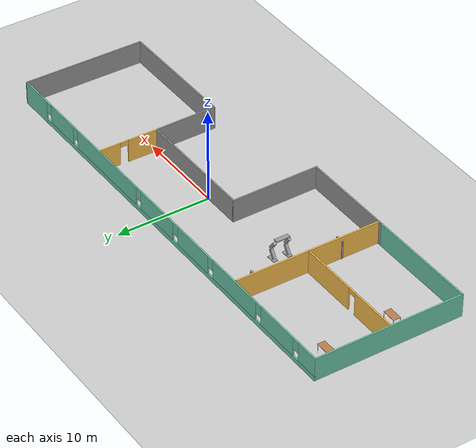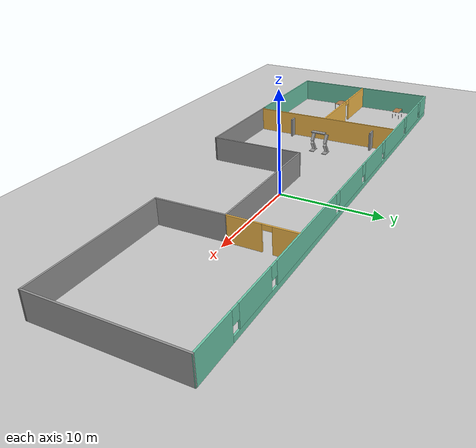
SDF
<sdf version="1.6">
 <world name="default">
  <model name="ground_plane">
   <static>1</static>
   <link name="link">
    <collision name="collision">
     <geometry><plane><normal>0 0 1</normal><size>100 100</size></plane></geometry>
     <surface>
      <contact><collide_bitmask>65535</collide_bitmask></contact>
      <friction><ode><mu>100</mu><mu2>50</mu2></ode></friction>
     </surface>
    </collision>
    <visual name="visual">
     <cast_shadows>0</cast_shadows>
     <geometry><plane><normal>0 0 1</normal><size>100 100</size></plane></geometry>
     <material>
      <script><uri>file://media/materials/scripts/gazebo.material</uri><name>Gazebo/Grey</name></script>
     </material>
    </visual>
   </link>
  </model>
  <model name="MyBuilding">
   <pose>-1.85481 -1.4802 0 0.0085 -0 0</pose>
   <link name="Door_4">
    <collision name="Door_4_Collision">
     <geometry><box><size>0.9 0.17 2</size></box></geometry>
     <pose>0 0 1 0 -0 0</pose>
    </collision>
    <visual name="Door_4_Visual">
     <pose>0 0 1 0 -0 0</pose>
     <geometry><box><size>0.9 0.17 2</size></box></geometry>
     <material>
      <script><uri>file://media/materials/scripts/gazebo.material</uri><name>Gazebo/Grey</name></script>
     </material>
    </visual>
    <pose>-11.699 5.51769 0 0 -0 0</pose>
   </link>
   <link name="Door_5">
    <collision name="Door_5_Collision">
     <geometry><box><size>0.9 0.17 2</size></box></geometry>
     <pose>0 0 1 0 -0 0</pose>
    </collision>
    <visual name="Door_5_Visual">
     <pose>0 0 1 0 -0 0</pose>
     <geometry><box><size>0.9 0.17 2</size></box></geometry>
     <material>
      <script><uri>file://media/materials/scripts/gazebo.material</uri><name>Gazebo/Grey</name></script>
     </material>
    </visual>
    <pose>-11.913 -3.79174 0 0 -0 0</pose>
   </link>
   <link name="Wall_22">
    <collision name="Wall_22_Collision">
     <geometry><box><size>16 0.15 2.5</size></box></geometry>
     <pose>0 0 1.25 0 -0 0</pose>
    </collision>
    <visual name="Wall_22_Visual">
     <pose>0 0 1.25 0 -0 0</pose>
     <geometry><box><size>16 0.15 2.5</size></box></geometry>
     <material>
      <script><uri>file://media/materials/scripts/gazebo.material</uri><name>Gazebo/Grey</name></script>
      <ambient>0.435294 0.796078 0.67451 1</ambient>
     </material>
     <meta><layer>0</layer></meta>
    </visual>
    <pose>-24.7002 0.000204 0 0 0 -1.5708</pose>
   </link>
   <link name="Wall_23">
    <collision name="Wall_23_Collision">
     <geometry><box><size>12.25 0.15 2.5</size></box></geometry>
     <pose>0 0 1.25 0 -0 0</pose>
    </collision>
    <visual name="Wall_23_Visual">
     <pose>0 0 1.25 0 -0 0</pose>
     <geometry><box><size>12.25 0.15 2.5</size></box></geometry>
     <material>
      <script><uri>file://media/materials/scripts/gazebo.material</uri><name>Gazebo/Grey</name></script>
      <ambient>0.435294 0.796078 0.67451 1</ambient>
     </material>
     <meta><layer>0</layer></meta>
    </visual>
    <pose>-18.6502 -7.9248 0 0 -0 0</pose>
   </link>
   <link name="Wall_24">
    <collision name="Wall_24_Collision">
     <geometry><box><size>10.5 0.15 2.5</size></box></geometry>
     <pose>0 0 1.25 0 -0 0</pose>
    </collision>
    <visual name="Wall_24_Visual">
     <pose>0 0 1.25 0 -0 0</pose>
     <geometry><box><size>10.5 0.15 2.5</size></box></geometry>
     <material>
      <script><uri>file://media/materials/scripts/gazebo.material</uri><name>Gazebo/Grey</name></script>
      <ambient>1 1 1 1</ambient>
     </material>
     <meta><layer>0</layer></meta>
    </visual>
    <pose>-7.42514 -7.92474 0 0 -0 1e-05</pose>
   </link>
   <link name="Wall_25">
    <collision name="Wall_25_Collision">
     <geometry><box><size>9.55411 0.15 2.5</size></box></geometry>
     <pose>0 0 1.25 0 -0 0</pose>
    </collision>
    <visual name="Wall_25_Visual">
     <pose>0 0 1.25 0 -0 0</pose>
     <geometry><box><size>9.55411 0.15 2.5</size></box></geometry>
     <material>
      <script><uri>file://media/materials/scripts/gazebo.material</uri><name>Gazebo/Grey</name></script>
      <ambient>1 1 1 1</ambient>
     </material>
     <meta><layer>0</layer></meta>
    </visual>
    <pose>-2.30359 -3.22294 0 0 -0 1.58218</pose>
   </link>
   <link name="Wall_26">
    <collision name="Wall_26_Collision">
     <geometry><box><size>13.4464 0.15 2.5</size></box></geometry>
     <pose>0 0 1.25 0 -0 0</pose>
    </collision>
    <visual name="Wall_26_Visual">
     <pose>0 0 1.25 0 -0 0</pose>
     <geometry><box><size>13.4464 0.15 2.5</size></box></geometry>
     <material>
      <script><uri>file://media/materials/scripts/gazebo.material</uri><name>Gazebo/Grey</name></script>
      <ambient>1 1 1 1</ambient>
     </material>
     <meta><layer>0</layer></meta>
    </visual>
    <pose>4.34461 1.47901 0 0 -0 3e-05</pose>
   </link>
   <link name="Wall_27">
    <collision name="Wall_27_Collision">
     <geometry><box><size>6.80436 0.15 2.5</size></box></geometry>
     <pose>0 0 1.25 0 -0 0</pose>
    </collision>
    <visual name="Wall_27_Visual">
     <pose>0 0 1.25 0 -0 0</pose>
     <geometry><box><size>6.80436 0.15 2.5</size></box></geometry>
     <material>
      <script><uri>file://media/materials/scripts/gazebo.material</uri><name>Gazebo/Grey</name></script>
      <ambient>1 1 1 1</ambient>
     </material>
     <meta><layer>0</layer></meta>
    </visual>
    <pose>11.0464 -1.84774 0 0 0 -1.5547</pose>
   </link>
   <link name="Wall_28">
    <collision name="Wall_28_Collision">
     <geometry><box><size>13.75 0.15 2.5</size></box></geometry>
     <pose>0 0 1.25 0 -0 0</pose>
    </collision>
    <visual name="Wall_28_Visual">
     <pose>0 0 1.25 0 -0 0</pose>
     <geometry><box><size>13.75 0.15 2.5</size></box></geometry>
     <material>
      <script><uri>file://media/materials/scripts/gazebo.material</uri><name>Gazebo/Grey</name></script>
      <ambient>1 1 1 1</ambient>
     </material>
     <meta><layer>0</layer></meta>
    </visual>
    <pose>17.8999 -5.17469 0 0 -0 0</pose>
   </link>
   <link name="Wall_29">
    <collision name="Wall_29_Collision">
     <geometry><box><size>13.2501 0.15 2.5</size></box></geometry>
     <pose>0 0 1.25 0 -0 0</pose>
    </collision>
    <visual name="Wall_29_Visual">
     <pose>0 0 1.25 0 -0 0</pose>
     <geometry><box><size>13.2501 0.15 2.5</size></box></geometry>
     <material>
      <script><uri>file://media/materials/scripts/gazebo.material</uri><name>Gazebo/Grey</name></script>
      <ambient>1 1 1 1</ambient>
     </material>
     <meta><layer>0</layer></meta>
    </visual>
    <pose>24.6749 1.37526 0 0 -0 1.57462</pose>
   </link>
   <link name="Wall_30">
    <pose>-0.025193 7.9252 0 0 -0 3.14159</pose>
    <visual name="Wall_30_Visual_0">
     <pose>-22.7354 0 1.25 0 -0 0</pose>
     <geometry><box><size>4.0293 0.15 2.5</size></box></geometry>
     <material>
      <script><uri>file://media/materials/scripts/gazebo.material</uri><name>Gazebo/Grey</name></script>
      <ambient>0.435294 0.796078 0.67451 1</ambient>
     </material>
     <meta><layer>0</layer></meta>
    </visual>
    <collision name="Wall_30_Collision_0">
     <geometry><box><size>4.0293 0.15 2.5</size></box></geometry>
     <pose>-22.7354 0 1.25 0 -0 0</pose>
    </collision>
    <visual name="Wall_30_Visual_1">
     <pose>2.01465 0 0.25 0 -0 0</pose>
     <geometry><box><size>45.4707 0.15 0.5</size></box></geometry>
     <material>
      <script><uri>file://media/materials/scripts/gazebo.material</uri><name>Gazebo/Grey</name></script>
      <ambient>0.435294 0.796078 0.67451 1</ambient>
     </material>
     <meta><layer>0</layer></meta>
    </visual>
    <collision name="Wall_30_Collision_1">
     <geometry><box><size>45.4707 0.15 0.5</size></box></geometry>
     <pose>2.01465 0 0.25 0 -0 0</pose>
    </collision>
    <visual name="Wall_30_Visual_2">
     <pose>-17.8061 0 1.5 0 -0 0</pose>
     <geometry><box><size>4.22924 0.15 2</size></box></geometry>
     <material>
      <script><uri>file://media/materials/scripts/gazebo.material</uri><name>Gazebo/Grey</name></script>
      <ambient>0.435294 0.796078 0.67451 1</ambient>
     </material>
     <meta><layer>0</layer></meta>
    </visual>
    <collision name="Wall_30_Collision_2">
     <geometry><box><size>4.22924 0.15 2</size></box></geometry>
     <pose>-17.8061 0 1.5 0 -0 0</pose>
    </collision>
    <visual name="Wall_30_Visual_3">
     <pose>-9.5667 0 1.5 0 -0 0</pose>
     <geometry><box><size>10.6495 0.15 2</size></box></geometry>
     <material>
      <script><uri>file://media/materials/scripts/gazebo.material</uri><name>Gazebo/Grey</name></script>
      <ambient>0.435294 0.796078 0.67451 1</ambient>
     </material>
     <meta><layer>0</layer></meta>
    </visual>
    <collision name="Wall_30_Collision_3">
     <geometry><box><size>10.6495 0.15 2</size></box></geometry>
     <pose>-9.5667 0 1.5 0 -0 0</pose>
    </collision>
    <visual name="Wall_30_Visual_4">
     <pose>-0.658536 0 1.5 0 -0 0</pose>
     <geometry><box><size>5.5668 0.15 2</size></box></geometry>
     <material>
      <script><uri>file://media/materials/scripts/gazebo.material</uri><name>Gazebo/Grey</name></script>
      <ambient>0.435294 0.796078 0.67451 1</ambient>
     </material>
     <meta><layer>0</layer></meta>
    </visual>
    <collision name="Wall_30_Collision_4">
     <geometry><box><size>5.5668 0.15 2</size></box></geometry>
     <pose>-0.658536 0 1.5 0 -0 0</pose>
    </collision>
    <visual name="Wall_30_Visual_5">
     <pose>5.44075 0 1.5 0 -0 0</pose>
     <geometry><box><size>5.03177 0.15 2</size></box></geometry>
     <material>
      <script><uri>file://media/materials/scripts/gazebo.material</uri><name>Gazebo/Grey</name></script>
      <ambient>0.435294 0.796078 0.67451 1</ambient>
     </material>
     <meta><layer>0</layer></meta>
    </visual>
    <collision name="Wall_30_Collision_5">
     <geometry><box><size>5.03177 0.15 2</size></box></geometry>
     <pose>5.44075 0 1.5 0 -0 0</pose>
    </collision>
    <visual name="Wall_30_Visual_6">
     <pose>12.2088 0 1.5 0 -0 0</pose>
     <geometry><box><size>6.90436 0.15 2</size></box></geometry>
     <material>
      <script><uri>file://media/materials/scripts/gazebo.material</uri><name>Gazebo/Grey</name></script>
      <ambient>0.435294 0.796078 0.67451 1</ambient>
     </material>
     <meta><layer>0</layer></meta>
    </visual>
    <collision name="Wall_30_Collision_6">
     <geometry><box><size>6.90436 0.15 2</size></box></geometry>
     <pose>12.2088 0 1.5 0 -0 0</pose>
    </collision>
    <visual name="Wall_30_Visual_7">
     <pose>18.9501 0 1.5 0 -0 0</pose>
     <geometry><box><size>4.97827 0.15 2</size></box></geometry>
     <material>
      <script><uri>file://media/materials/scripts/gazebo.material</uri><name>Gazebo/Grey</name></script>
      <ambient>0.435294 0.796078 0.67451 1</ambient>
     </material>
     <meta><layer>0</layer></meta>
    </visual>
    <collision name="Wall_30_Collision_7">
     <geometry><box><size>4.97827 0.15 2</size></box></geometry>
     <pose>18.9501 0 1.5 0 -0 0</pose>
    </collision>
    <visual name="Wall_30_Visual_8">
     <pose>23.4946 0 1.5 0 -0 0</pose>
     <geometry><box><size>2.51073 0.15 2</size></box></geometry>
     <material>
      <script><uri>file://media/materials/scripts/gazebo.material</uri><name>Gazebo/Grey</name></script>
      <ambient>0.435294 0.796078 0.67451 1</ambient>
     </material>
     <meta><layer>0</layer></meta>
    </visual>
    <collision name="Wall_30_Collision_8">
     <geometry><box><size>2.51073 0.15 2</size></box></geometry>
     <pose>23.4946 0 1.5 0 -0 0</pose>
    </collision>
    <visual name="Wall_30_Visual_9">
     <pose>-20.3207 0 1.9 0 -0 0</pose>
     <geometry><box><size>0.8 0.15 1.2</size></box></geometry>
     <material>
      <script><uri>file://media/materials/scripts/gazebo.material</uri><name>Gazebo/Grey</name></script>
      <ambient>0.435294 0.796078 0.67451 1</ambient>
     </material>
     <meta><layer>0</layer></meta>
    </visual>
    <collision name="Wall_30_Collision_9">
     <geometry><box><size>0.8 0.15 1.2</size></box></geometry>
     <pose>-20.3207 0 1.9 0 -0 0</pose>
    </collision>
    <visual name="Wall_30_Visual_10">
     <pose>-15.2915 0 1.9 0 -0 0</pose>
     <geometry><box><size>0.8 0.15 1.2</size></box></geometry>
     <material>
      <script><uri>file://media/materials/scripts/gazebo.material</uri><name>Gazebo/Grey</name></script>
      <ambient>0.435294 0.796078 0.67451 1</ambient>
     </material>
     <meta><layer>0</layer></meta>
    </visual>
    <collision name="Wall_30_Collision_10">
     <geometry><box><size>0.8 0.15 1.2</size></box></geometry>
     <pose>-15.2915 0 1.9 0 -0 0</pose>
    </collision>
    <visual name="Wall_30_Visual_11">
     <pose>-3.84193 0 1.9 0 -0 0</pose>
     <geometry><box><size>0.8 0.15 1.2</size></box></geometry>
     <material>
      <script><uri>file://media/materials/scripts/gazebo.material</uri><name>Gazebo/Grey</name></script>
      <ambient>0.435294 0.796078 0.67451 1</ambient>
     </material>
     <meta><layer>0</layer></meta>
    </visual>
    <collision name="Wall_30_Collision_11">
     <geometry><box><size>0.8 0.15 1.2</size></box></geometry>
     <pose>-3.84193 0 1.9 0 -0 0</pose>
    </collision>
    <visual name="Wall_30_Visual_12">
     <pose>2.52486 0 1.9 0 -0 0</pose>
     <geometry><box><size>0.8 0.15 1.2</size></box></geometry>
     <material>
      <script><uri>file://media/materials/scripts/gazebo.material</uri><name>Gazebo/Grey</name></script>
      <ambient>0.435294 0.796078 0.67451 1</ambient>
     </material>
     <meta><layer>0</layer></meta>
    </visual>
    <collision name="Wall_30_Collision_12">
     <geometry><box><size>0.8 0.15 1.2</size></box></geometry>
     <pose>2.52486 0 1.9 0 -0 0</pose>
    </collision>
    <visual name="Wall_30_Visual_13">
     <pose>8.35664 0 1.9 0 -0 0</pose>
     <geometry><box><size>0.8 0.15 1.2</size></box></geometry>
     <material>
      <script><uri>file://media/materials/scripts/gazebo.material</uri><name>Gazebo/Grey</name></script>
      <ambient>0.435294 0.796078 0.67451 1</ambient>
     </material>
     <meta><layer>0</layer></meta>
    </visual>
    <collision name="Wall_30_Collision_13">
     <geometry><box><size>0.8 0.15 1.2</size></box></geometry>
     <pose>8.35664 0 1.9 0 -0 0</pose>
    </collision>
    <visual name="Wall_30_Visual_14">
     <pose>16.061 0 1.9 0 -0 0</pose>
     <geometry><box><size>0.8 0.15 1.2</size></box></geometry>
     <material>
      <script><uri>file://media/materials/scripts/gazebo.material</uri><name>Gazebo/Grey</name></script>
      <ambient>0.435294 0.796078 0.67451 1</ambient>
     </material>
     <meta><layer>0</layer></meta>
    </visual>
    <collision name="Wall_30_Collision_14">
     <geometry><box><size>0.8 0.15 1.2</size></box></geometry>
     <pose>16.061 0 1.9 0 -0 0</pose>
    </collision>
    <visual name="Wall_30_Visual_15">
     <pose>21.8393 0 1.9 0 -0 0</pose>
     <geometry><box><size>0.8 0.15 1.2</size></box></geometry>
     <material>
      <script><uri>file://media/materials/scripts/gazebo.material</uri><name>Gazebo/Grey</name></script>
      <ambient>0.435294 0.796078 0.67451 1</ambient>
     </material>
     <meta><layer>0</layer></meta>
    </visual>
    <collision name="Wall_30_Collision_15">
     <geometry><box><size>0.8 0.15 1.2</size></box></geometry>
     <pose>21.8393 0 1.9 0 -0 0</pose>
    </collision>
   </link>
   <link name="Wall_32">
    <collision name="Wall_32_Collision">
     <geometry><box><size>15.75 0.15 2.5</size></box></geometry>
     <pose>0 0 1.25 0 -0 0</pose>
    </collision>
    <visual name="Wall_32_Visual">
     <pose>0 0 1.25 0 -0 0</pose>
     <geometry><box><size>15.75 0.15 2.5</size></box></geometry>
     <material>
      <script><uri>file://media/materials/scripts/gazebo.material</uri><name>Gazebo/Grey</name></script>
      <ambient>1 0.764706 0.305882 1</ambient>
     </material>
     <meta><layer>0</layer></meta>
    </visual>
    <pose>-12.2342 -0.088796 0 0 0 -1.5708</pose>
   </link>
   <link name="Wall_34">
    <pose>-18.4182 -0.099796 0 0 -0 0</pose>
    <visual name="Wall_34_Visual_0">
     <pose>-3.62857 0 1.25 0 -0 0</pose>
     <geometry><box><size>5.24287 0.15 2.5</size></box></geometry>
     <material>
      <script><uri>file://media/materials/scripts/gazebo.material</uri><name>Gazebo/Grey</name></script>
      <ambient>1 0.764706 0.305882 1</ambient>
     </material>
     <meta><layer>0</layer></meta>
    </visual>
    <collision name="Wall_34_Collision_0">
     <geometry><box><size>5.24287 0.15 2.5</size></box></geometry>
     <pose>-3.62857 0 1.25 0 -0 0</pose>
    </collision>
    <visual name="Wall_34_Visual_1">
     <pose>3.07144 0 1.25 0 -0 0</pose>
     <geometry><box><size>6.35713 0.15 2.5</size></box></geometry>
     <material>
      <script><uri>file://media/materials/scripts/gazebo.material</uri><name>Gazebo/Grey</name></script>
      <ambient>1 0.764706 0.305882 1</ambient>
     </material>
     <meta><layer>0</layer></meta>
    </visual>
    <collision name="Wall_34_Collision_1">
     <geometry><box><size>6.35713 0.15 2.5</size></box></geometry>
     <pose>3.07144 0 1.25 0 -0 0</pose>
    </collision>
    <visual name="Wall_34_Visual_2">
     <pose>-0.557131 0 2.25 0 -0 0</pose>
     <geometry><box><size>0.9 0.15 0.5</size></box></geometry>
     <material>
      <script><uri>file://media/materials/scripts/gazebo.material</uri><name>Gazebo/Grey</name></script>
      <ambient>1 0.764706 0.305882 1</ambient>
     </material>
     <meta><layer>0</layer></meta>
    </visual>
    <collision name="Wall_34_Collision_2">
     <geometry><box><size>0.9 0.15 0.5</size></box></geometry>
     <pose>-0.557131 0 2.25 0 -0 0</pose>
    </collision>
   </link>
   <link name="Wall_36">
    <pose>10.9928 4.6542 0 0 0 -1.5708</pose>
    <visual name="Wall_36_Visual_0">
     <pose>-2.09449 0 1.25 0 -0 0</pose>
     <geometry><box><size>2.31103 0.15 2.5</size></box></geometry>
     <material>
      <script><uri>file://media/materials/scripts/gazebo.material</uri><name>Gazebo/Grey</name></script>
      <ambient>1 0.764706 0.305882 1</ambient>
     </material>
     <meta><layer>0</layer></meta>
    </visual>
    <collision name="Wall_36_Collision_0">
     <geometry><box><size>2.31103 0.15 2.5</size></box></geometry>
     <pose>-2.09449 0 1.25 0 -0 0</pose>
    </collision>
    <visual name="Wall_36_Visual_1">
     <pose>1.60551 0 1.25 0 -0 0</pose>
     <geometry><box><size>3.28897 0.15 2.5</size></box></geometry>
     <material>
      <script><uri>file://media/materials/scripts/gazebo.material</uri><name>Gazebo/Grey</name></script>
      <ambient>1 0.764706 0.305882 1</ambient>
     </material>
     <meta><layer>0</layer></meta>
    </visual>
    <collision name="Wall_36_Collision_1">
     <geometry><box><size>3.28897 0.15 2.5</size></box></geometry>
     <pose>1.60551 0 1.25 0 -0 0</pose>
    </collision>
    <visual name="Wall_36_Visual_2">
     <pose>-0.488973 0 2.25 0 -0 0</pose>
     <geometry><box><size>0.9 0.15 0.5</size></box></geometry>
     <material>
      <script><uri>file://media/materials/scripts/gazebo.material</uri><name>Gazebo/Grey</name></script>
      <ambient>1 0.764706 0.305882 1</ambient>
     </material>
     <meta><layer>0</layer></meta>
    </visual>
    <collision name="Wall_36_Collision_2">
     <geometry><box><size>0.9 0.15 0.5</size></box></geometry>
     <pose>-0.488973 0 2.25 0 -0 0</pose>
    </collision>
   </link>
   <static>1</static>
  </model>
  <model name="Humanoid_0">
   <link name="link_0">
    <pose>-0.048492 0.285713 -0.132344 0 -0 0</pose>
    <inertial>
     <mass>1</mass>
     <inertia>
      <ixx>0.166667</ixx>
      <ixy>0</ixy>
      <ixz>0</ixz>
      <iyy>0.166667</iyy>
      <iyz>0</iyz>
      <izz>0.166667</izz>
     </inertia>
    </inertial>
    <visual name="visual">
     <geometry><box><size>1 0.5 0.3</size></box></geometry>
     <material>
      <lighting>1</lighting>
      <script><uri>file://media/materials/scripts/gazebo.material</uri><name>Gazebo/Grey</name></script>
      <shader type="pixel"><normal_map>__default__</normal_map></shader>
      <ambient>0.3 0.3 0.3 1</ambient>
      <diffuse>0.7 0.7 0.7 1</diffuse>
      <specular>0.01 0.01 0.01 1</specular>
      <emissive>0 0 0 1</emissive>
     </material>
    </visual>
    <collision name="collision">
     <geometry><box><size>1 0.5 0.3</size></box></geometry>
     <surface>
      <friction>
       <ode><mu>1</mu><mu2>1</mu2><fdir1>0 0 0</fdir1><slip1>0</slip1><slip2>0</slip2></ode>
       <torsional>
        <coefficient>1</coefficient>
        <patch_radius>0</patch_radius>
        <surface_radius>0</surface_radius>
        <use_patch_radius>1</use_patch_radius>
        <ode><slip>0</slip></ode>
       </torsional>
      </friction>
      <bounce><restitution_coefficient>0</restitution_coefficient><threshold>1e+06</threshold></bounce>
      <contact>
       <collide_without_contact>0</collide_without_contact>
       <collide_without_contact_bitmask>1</collide_without_contact_bitmask>
       <collide_bitmask>1</collide_bitmask>
       <ode>
        <soft_cfm>0</soft_cfm>
        <soft_erp>0.2</soft_erp>
        <kp>1e+13</kp>
        <kd>1</kd>
        <max_vel>0.01</max_vel>
        <min_depth>0</min_depth>
       </ode>
       <bullet>
        <split_impulse>1</split_impulse>
        <split_impulse_penetration_threshold>-0.01</split_impulse_penetration_threshold>
        <soft_cfm>0</soft_cfm>
        <soft_erp>0.2</soft_erp>
        <kp>1e+13</kp>
        <kd>1</kd>
       </bullet>
      </contact>
     </surface>
    </collision>
   </link>
   <link name="link_0_clone">
    <pose>0.107629 1.78606 -0.132344 0 -0 0</pose>
    <inertial>
     <mass>1</mass>
     <inertia>
      <ixx>0.166667</ixx>
      <ixy>0</ixy>
      <ixz>0</ixz>
      <iyy>0.166667</iyy>
      <iyz>0</iyz>
      <izz>0.166667</izz>
     </inertia>
    </inertial>
    <visual name="visual">
     <geometry><box><size>1 0.5 0.3</size></box></geometry>
     <material>
      <lighting>1</lighting>
      <script><uri>file://media/materials/scripts/gazebo.material</uri><name>Gazebo/Grey</name></script>
      <shader type="pixel"><normal_map>__default__</normal_map></shader>
      <ambient>0.3 0.3 0.3 1</ambient>
      <diffuse>0.7 0.7 0.7 1</diffuse>
      <specular>0.01 0.01 0.01 1</specular>
      <emissive>0 0 0 1</emissive>
     </material>
    </visual>
    <collision name="collision">
     <geometry><box><size>1 0.5 0.3</size></box></geometry>
     <surface>
      <friction>
       <ode><mu>1</mu><mu2>1</mu2><fdir1>0 0 0</fdir1><slip1>0</slip1><slip2>0</slip2></ode>
       <torsional>
        <coefficient>1</coefficient>
        <patch_radius>0</patch_radius>
        <surface_radius>0</surface_radius>
        <use_patch_radius>1</use_patch_radius>
        <ode><slip>0</slip></ode>
       </torsional>
      </friction>
      <bounce><restitution_coefficient>0</restitution_coefficient><threshold>1e+06</threshold></bounce>
      <contact>
       <collide_without_contact>0</collide_without_contact>
       <collide_without_contact_bitmask>1</collide_without_contact_bitmask>
       <collide_bitmask>1</collide_bitmask>
       <ode>
        <soft_cfm>0</soft_cfm>
        <soft_erp>0.2</soft_erp>
        <kp>1e+13</kp>
        <kd>1</kd>
        <max_vel>0.01</max_vel>
        <min_depth>0</min_depth>
       </ode>
       <bullet>
        <split_impulse>1</split_impulse>
        <split_impulse_penetration_threshold>-0.01</split_impulse_penetration_threshold>
        <soft_cfm>0</soft_cfm>
        <soft_erp>0.2</soft_erp>
        <kp>1e+13</kp>
        <kd>1</kd>
       </bullet>
      </contact>
     </surface>
    </collision>
   </link>
   <link name="link_1">
    <pose>-0.048492 0.285713 0.51502 0 0.6 0</pose>
    <inertial>
     <mass>1</mass>
     <inertia>
      <ixx>0.166667</ixx>
      <ixy>0</ixy>
      <ixz>0</ixz>
      <iyy>0.166667</iyy>
      <iyz>0</iyz>
      <izz>0.166667</izz>
     </inertia>
    </inertial>
    <visual name="visual">
     <geometry><box><size>0.3 0.3 1</size></box></geometry>
     <material>
      <lighting>1</lighting>
      <script><uri>file://media/materials/scripts/gazebo.material</uri><name>Gazebo/Grey</name></script>
      <shader type="pixel"><normal_map>__default__</normal_map></shader>
      <ambient>0.3 0.3 0.3 1</ambient>
      <diffuse>0.7 0.7 0.7 1</diffuse>
      <specular>0.01 0.01 0.01 1</specular>
      <emissive>0 0 0 1</emissive>
     </material>
    </visual>
    <collision name="collision">
     <geometry><box><size>0.3 0.3 1</size></box></geometry>
     <surface>
      <friction>
       <ode><mu>1</mu><mu2>1</mu2><fdir1>0 0 0</fdir1><slip1>0</slip1><slip2>0</slip2></ode>
       <torsional>
        <coefficient>1</coefficient>
        <patch_radius>0</patch_radius>
        <surface_radius>0</surface_radius>
        <use_patch_radius>1</use_patch_radius>
        <ode><slip>0</slip></ode>
       </torsional>
      </friction>
      <bounce><restitution_coefficient>0</restitution_coefficient><threshold>1e+06</threshold></bounce>
      <contact>
       <collide_without_contact>0</collide_without_contact>
       <collide_without_contact_bitmask>1</collide_without_contact_bitmask>
       <collide_bitmask>1</collide_bitmask>
       <ode>
        <soft_cfm>0</soft_cfm>
        <soft_erp>0.2</soft_erp>
        <kp>1e+13</kp>
        <kd>1</kd>
        <max_vel>0.01</max_vel>
        <min_depth>0</min_depth>
       </ode>
       <bullet>
        <split_impulse>1</split_impulse>
        <split_impulse_penetration_threshold>-0.01</split_impulse_penetration_threshold>
        <soft_cfm>0</soft_cfm>
        <soft_erp>0.2</soft_erp>
        <kp>1e+13</kp>
        <kd>1</kd>
       </bullet>
      </contact>
     </surface>
    </collision>
   </link>
   <link name="link_1_clone">
    <pose>-0.048492 0.285713 1.50975 0 -0.6 0</pose>
    <inertial>
     <mass>1</mass>
     <inertia>
      <ixx>0.166667</ixx>
      <ixy>0</ixy>
      <ixz>0</ixz>
      <iyy>0.166667</iyy>
      <iyz>0</iyz>
      <izz>0.166667</izz>
     </inertia>
    </inertial>
    <visual name="visual">
     <geometry><box><size>0.3 0.3 1</size></box></geometry>
     <material>
      <lighting>1</lighting>
      <script><uri>file://media/materials/scripts/gazebo.material</uri><name>Gazebo/Grey</name></script>
      <shader type="pixel"><normal_map>__default__</normal_map></shader>
      <ambient>0.3 0.3 0.3 1</ambient>
      <diffuse>0.7 0.7 0.7 1</diffuse>
      <specular>0.01 0.01 0.01 1</specular>
      <emissive>0 0 0 1</emissive>
     </material>
    </visual>
    <collision name="collision">
     <geometry><box><size>0.3 0.3 1</size></box></geometry>
     <surface>
      <friction>
       <ode><mu>1</mu><mu2>1</mu2><fdir1>0 0 0</fdir1><slip1>0</slip1><slip2>0</slip2></ode>
       <torsional>
        <coefficient>1</coefficient>
        <patch_radius>0</patch_radius>
        <surface_radius>0</surface_radius>
        <use_patch_radius>1</use_patch_radius>
        <ode><slip>0</slip></ode>
       </torsional>
      </friction>
      <bounce><restitution_coefficient>0</restitution_coefficient><threshold>1e+06</threshold></bounce>
      <contact>
       <collide_without_contact>0</collide_without_contact>
       <collide_without_contact_bitmask>1</collide_without_contact_bitmask>
       <collide_bitmask>1</collide_bitmask>
       <ode>
        <soft_cfm>0</soft_cfm>
        <soft_erp>0.2</soft_erp>
        <kp>1e+13</kp>
        <kd>1</kd>
        <max_vel>0.01</max_vel>
        <min_depth>0</min_depth>
       </ode>
       <bullet>
        <split_impulse>1</split_impulse>
        <split_impulse_penetration_threshold>-0.01</split_impulse_penetration_threshold>
        <soft_cfm>0</soft_cfm>
        <soft_erp>0.2</soft_erp>
        <kp>1e+13</kp>
        <kd>1</kd>
       </bullet>
      </contact>
     </surface>
    </collision>
   </link>
   <link name="link_1_clone_0">
    <pose>0.107629 1.78606 0.51502 0 0.6 0</pose>
    <inertial>
     <mass>1</mass>
     <inertia>
      <ixx>0.166667</ixx>
      <ixy>0</ixy>
      <ixz>0</ixz>
      <iyy>0.166667</iyy>
      <iyz>0</iyz>
      <izz>0.166667</izz>
     </inertia>
    </inertial>
    <visual name="visual">
     <geometry><box><size>0.3 0.3 1</size></box></geometry>
     <material>
      <lighting>1</lighting>
      <script><uri>file://media/materials/scripts/gazebo.material</uri><name>Gazebo/Grey</name></script>
      <shader type="pixel"><normal_map>__default__</normal_map></shader>
      <ambient>0.3 0.3 0.3 1</ambient>
      <diffuse>0.7 0.7 0.7 1</diffuse>
      <specular>0.01 0.01 0.01 1</specular>
      <emissive>0 0 0 1</emissive>
     </material>
    </visual>
    <collision name="collision">
     <geometry><box><size>0.3 0.3 1</size></box></geometry>
     <surface>
      <friction>
       <ode><mu>1</mu><mu2>1</mu2><fdir1>0 0 0</fdir1><slip1>0</slip1><slip2>0</slip2></ode>
       <torsional>
        <coefficient>1</coefficient>
        <patch_radius>0</patch_radius>
        <surface_radius>0</surface_radius>
        <use_patch_radius>1</use_patch_radius>
        <ode><slip>0</slip></ode>
       </torsional>
      </friction>
      <bounce><restitution_coefficient>0</restitution_coefficient><threshold>1e+06</threshold></bounce>
      <contact>
       <collide_without_contact>0</collide_without_contact>
       <collide_without_contact_bitmask>1</collide_without_contact_bitmask>
       <collide_bitmask>1</collide_bitmask>
       <ode>
        <soft_cfm>0</soft_cfm>
        <soft_erp>0.2</soft_erp>
        <kp>1e+13</kp>
        <kd>1</kd>
        <max_vel>0.01</max_vel>
        <min_depth>0</min_depth>
       </ode>
       <bullet>
        <split_impulse>1</split_impulse>
        <split_impulse_penetration_threshold>-0.01</split_impulse_penetration_threshold>
        <soft_cfm>0</soft_cfm>
        <soft_erp>0.2</soft_erp>
        <kp>1e+13</kp>
        <kd>1</kd>
       </bullet>
      </contact>
     </surface>
    </collision>
   </link>
   <link name="link_1_clone_clone">
    <pose>0.107629 1.78606 1.50975 0 -0.6 0</pose>
    <inertial>
     <mass>1</mass>
     <inertia>
      <ixx>0.166667</ixx>
      <ixy>0</ixy>
      <ixz>0</ixz>
      <iyy>0.166667</iyy>
      <iyz>0</iyz>
      <izz>0.166667</izz>
     </inertia>
    </inertial>
    <visual name="visual">
     <geometry><box><size>0.3 0.3 1</size></box></geometry>
     <material>
      <lighting>1</lighting>
      <script><uri>file://media/materials/scripts/gazebo.material</uri><name>Gazebo/Grey</name></script>
      <shader type="pixel"><normal_map>__default__</normal_map></shader>
      <ambient>0.3 0.3 0.3 1</ambient>
      <diffuse>0.7 0.7 0.7 1</diffuse>
      <specular>0.01 0.01 0.01 1</specular>
      <emissive>0 0 0 1</emissive>
     </material>
    </visual>
    <collision name="collision">
     <geometry><box><size>0.3 0.3 1</size></box></geometry>
     <surface>
      <friction>
       <ode><mu>1</mu><mu2>1</mu2><fdir1>0 0 0</fdir1><slip1>0</slip1><slip2>0</slip2></ode>
       <torsional>
        <coefficient>1</coefficient>
        <patch_radius>0</patch_radius>
        <surface_radius>0</surface_radius>
        <use_patch_radius>1</use_patch_radius>
        <ode><slip>0</slip></ode>
       </torsional>
      </friction>
      <bounce><restitution_coefficient>0</restitution_coefficient><threshold>1e+06</threshold></bounce>
      <contact>
       <collide_without_contact>0</collide_without_contact>
       <collide_without_contact_bitmask>1</collide_without_contact_bitmask>
       <collide_bitmask>1</collide_bitmask>
       <ode>
        <soft_cfm>0</soft_cfm>
        <soft_erp>0.2</soft_erp>
        <kp>1e+13</kp>
        <kd>1</kd>
        <max_vel>0.01</max_vel>
        <min_depth>0</min_depth>
       </ode>
       <bullet>
        <split_impulse>1</split_impulse>
        <split_impulse_penetration_threshold>-0.01</split_impulse_penetration_threshold>
        <soft_cfm>0</soft_cfm>
        <soft_erp>0.2</soft_erp>
        <kp>1e+13</kp>
        <kd>1</kd>
       </bullet>
      </contact>
     </surface>
    </collision>
   </link>
   <link name="link_2">
    <pose>-0.048492 0.885713 2.05711 0 -0 0</pose>
    <inertial>
     <mass>1</mass>
     <inertia>
      <ixx>0.166667</ixx>
      <ixy>0</ixy>
      <ixz>0</ixz>
      <iyy>0.166667</iyy>
      <iyz>0</iyz>
      <izz>0.166667</izz>
     </inertia>
    </inertial>
    <visual name="visual">
     <geometry><box><size>0.5 1.5 0.1</size></box></geometry>
     <material>
      <lighting>1</lighting>
      <script><uri>file://media/materials/scripts/gazebo.material</uri><name>Gazebo/Grey</name></script>
      <shader type="pixel"><normal_map>__default__</normal_map></shader>
      <ambient>0.3 0.3 0.3 1</ambient>
      <diffuse>0.7 0.7 0.7 1</diffuse>
      <specular>0.01 0.01 0.01 1</specular>
      <emissive>0 0 0 1</emissive>
     </material>
    </visual>
    <collision name="collision">
     <geometry><box><size>0.5 1.5 0.1</size></box></geometry>
     <surface>
      <friction>
       <ode><mu>1</mu><mu2>1</mu2><fdir1>0 0 0</fdir1><slip1>0</slip1><slip2>0</slip2></ode>
       <torsional>
        <coefficient>1</coefficient>
        <patch_radius>0</patch_radius>
        <surface_radius>0</surface_radius>
        <use_patch_radius>1</use_patch_radius>
        <ode><slip>0</slip></ode>
       </torsional>
      </friction>
      <bounce><restitution_coefficient>0</restitution_coefficient><threshold>1e+06</threshold></bounce>
      <contact>
       <collide_without_contact>0</collide_without_contact>
       <collide_without_contact_bitmask>1</collide_without_contact_bitmask>
       <collide_bitmask>1</collide_bitmask>
       <ode>
        <soft_cfm>0</soft_cfm>
        <soft_erp>0.2</soft_erp>
        <kp>1e+13</kp>
        <kd>1</kd>
        <max_vel>0.01</max_vel>
        <min_depth>0</min_depth>
       </ode>
       <bullet>
        <split_impulse>1</split_impulse>
        <split_impulse_penetration_threshold>-0.01</split_impulse_penetration_threshold>
        <soft_cfm>0</soft_cfm>
        <soft_erp>0.2</soft_erp>
        <kp>1e+13</kp>
        <kd>1</kd>
       </bullet>
      </contact>
     </surface>
    </collision>
   </link>
   <joint name="link_1_JOINT_9" type="revolute">
    <parent>link_1</parent>
    <child>link_0</child>
    <axis>
     <xyz>1 0 0</xyz>
     <use_parent_model_frame>0</use_parent_model_frame>
     <limit>
      <lower>-1.79769e+308</lower>
      <upper>1.79769e+308</upper>
      <effort>-1</effort>
      <velocity>-1</velocity>
     </limit>
     <dynamics>
      <spring_reference>0</spring_reference>
      <spring_stiffness>0</spring_stiffness>
      <damping>0</damping>
      <friction>0</friction>
     </dynamics>
    </axis>
    <physics>
     <ode><limit><cfm>0</cfm><erp>0.2</erp></limit><suspension><cfm>0</cfm><erp>0.2</erp></suspension></ode>
    </physics>
   </joint>
   <joint name="link_1_clone_0_JOINT_10" type="revolute">
    <parent>link_1_clone_0</parent>
    <child>link_0_clone</child>
    <axis>
     <xyz>1 0 0</xyz>
     <use_parent_model_frame>0</use_parent_model_frame>
     <limit>
      <lower>-1.79769e+308</lower>
      <upper>1.79769e+308</upper>
      <effort>-1</effort>
      <velocity>-1</velocity>
     </limit>
     <dynamics>
      <spring_reference>0</spring_reference>
      <spring_stiffness>0</spring_stiffness>
      <damping>0</damping>
      <friction>0</friction>
     </dynamics>
    </axis>
    <physics>
     <ode><limit><cfm>0</cfm><erp>0.2</erp></limit><suspension><cfm>0</cfm><erp>0.2</erp></suspension></ode>
    </physics>
   </joint>
   <joint name="link_1_clone_JOINT_7" type="revolute">
    <parent>link_1_clone</parent>
    <child>link_1</child>
    <axis>
     <xyz>1 0 0</xyz>
     <use_parent_model_frame>0</use_parent_model_frame>
     <limit>
      <lower>-1.79769e+308</lower>
      <upper>1.79769e+308</upper>
      <effort>-1</effort>
      <velocity>-1</velocity>
     </limit>
     <dynamics>
      <spring_reference>0</spring_reference>
      <spring_stiffness>0</spring_stiffness>
      <damping>0</damping>
      <friction>0</friction>
     </dynamics>
    </axis>
    <physics>
     <ode><limit><cfm>0</cfm><erp>0.2</erp></limit><suspension><cfm>0</cfm><erp>0.2</erp></suspension></ode>
    </physics>
   </joint>
   <joint name="link_1_clone_clone_JOINT_8" type="revolute">
    <parent>link_1_clone_clone</parent>
    <child>link_1_clone_0</child>
    <axis>
     <xyz>1 0 0</xyz>
     <use_parent_model_frame>0</use_parent_model_frame>
     <limit>
      <lower>-1.79769e+308</lower>
      <upper>1.79769e+308</upper>
      <effort>-1</effort>
      <velocity>-1</velocity>
     </limit>
     <dynamics>
      <spring_reference>0</spring_reference>
      <spring_stiffness>0</spring_stiffness>
      <damping>0</damping>
      <friction>0</friction>
     </dynamics>
    </axis>
    <physics>
     <ode><limit><cfm>0</cfm><erp>0.2</erp></limit><suspension><cfm>0</cfm><erp>0.2</erp></suspension></ode>
    </physics>
   </joint>
   <joint name="link_2_JOINT_5" type="revolute">
    <parent>link_2</parent>
    <child>link_1_clone</child>
    <axis>
     <xyz>1 0 0</xyz>
     <use_parent_model_frame>0</use_parent_model_frame>
     <limit>
      <lower>-1.79769e+308</lower>
      <upper>1.79769e+308</upper>
      <effort>-1</effort>
      <velocity>-1</velocity>
     </limit>
     <dynamics>
      <spring_reference>0</spring_reference>
      <spring_stiffness>0</spring_stiffness>
      <damping>0</damping>
      <friction>0</friction>
     </dynamics>
    </axis>
    <physics>
     <ode><limit><cfm>0</cfm><erp>0.2</erp></limit><suspension><cfm>0</cfm><erp>0.2</erp></suspension></ode>
    </physics>
   </joint>
   <joint name="link_2_JOINT_6" type="revolute">
    <parent>link_2</parent>
    <child>link_1_clone_clone</child>
    <axis>
     <xyz>1 0 0</xyz>
     <use_parent_model_frame>0</use_parent_model_frame>
     <limit>
      <lower>-1.79769e+308</lower>
      <upper>1.79769e+308</upper>
      <effort>-1</effort>
      <velocity>-1</velocity>
     </limit>
     <dynamics>
      <spring_reference>0</spring_reference>
      <spring_stiffness>0</spring_stiffness>
      <damping>0</damping>
      <friction>0</friction>
     </dynamics>
    </axis>
    <physics>
     <ode><limit><cfm>0</cfm><erp>0.2</erp></limit><suspension><cfm>0</cfm><erp>0.2</erp></suspension></ode>
    </physics>
   </joint>
   <static>1</static>
   <pose>-10.816 -1.78879 0 0 -0 0</pose>
  </model>
  <model name="table">
   <static>1</static>
   <link name="link">
    <collision name="surface">
     <pose>0 0 1 0 -0 0</pose>
     <geometry><box><size>1.5 0.8 0.03</size></box></geometry>
     <surface><friction><ode><mu>0.6</mu><mu2>0.6</mu2></ode></friction></surface>
    </collision>
    <visual name="visual1">
     <pose>0 0 1 0 -0 0</pose>
     <geometry><box><size>1.5 0.8 0.03</size></box></geometry>
     <material>
      <script><uri>file://media/materials/scripts/gazebo.material</uri><name>Gazebo/Wood</name></script>
     </material>
    </visual>
    <collision name="front_left_leg">
     <pose>0.68 0.38 0.5 0 -0 0</pose>
     <geometry><cylinder><radius>0.02</radius><length>1</length></cylinder></geometry>
    </collision>
    <visual name="front_left_leg">
     <pose>0.68 0.38 0.5 0 -0 0</pose>
     <geometry><cylinder><radius>0.02</radius><length>1</length></cylinder></geometry>
     <material>
      <script><uri>file://media/materials/scripts/gazebo.material</uri><name>Gazebo/Grey</name></script>
     </material>
    </visual>
    <collision name="front_right_leg">
     <pose>0.68 -0.38 0.5 0 -0 0</pose>
     <geometry><cylinder><radius>0.02</radius><length>1</length></cylinder></geometry>
    </collision>
    <visual name="front_right_leg">
     <pose>0.68 -0.38 0.5 0 -0 0</pose>
     <geometry><cylinder><radius>0.02</radius><length>1</length></cylinder></geometry>
     <material>
      <script><uri>file://media/materials/scripts/gazebo.material</uri><name>Gazebo/Grey</name></script>
     </material>
    </visual>
    <collision name="back_right_leg">
     <pose>-0.68 -0.38 0.5 0 -0 0</pose>
     <geometry><cylinder><radius>0.02</radius><length>1</length></cylinder></geometry>
    </collision>
    <visual name="back_right_leg">
     <pose>-0.68 -0.38 0.5 0 -0 0</pose>
     <geometry><cylinder><radius>0.02</radius><length>1</length></cylinder></geometry>
     <material>
      <script><uri>file://media/materials/scripts/gazebo.material</uri><name>Gazebo/Grey</name></script>
     </material>
    </visual>
    <collision name="back_left_leg">
     <pose>-0.68 0.38 0.5 0 -0 0</pose>
     <geometry><cylinder><radius>0.02</radius><length>1</length></cylinder></geometry>
    </collision>
    <visual name="back_left_leg">
     <pose>-0.68 0.38 0.5 0 -0 0</pose>
     <geometry><cylinder><radius>0.02</radius><length>1</length></cylinder></geometry>
     <material>
      <script><uri>file://media/materials/scripts/gazebo.material</uri><name>Gazebo/Grey</name></script>
     </material>
    </visual>
   </link>
   <pose>-24.0446 -3.64922 0 0 -0 0</pose>
  </model>
  <model name="table_0">
   <static>1</static>
   <link name="link">
    <collision name="surface">
     <pose>0 0 1 0 -0 0</pose>
     <geometry><box><size>1.5 0.8 0.03</size></box></geometry>
     <surface><friction><ode><mu>0.6</mu><mu2>0.6</mu2></ode></friction></surface>
    </collision>
    <visual name="visual1">
     <pose>0 0 1 0 -0 0</pose>
     <geometry><box><size>1.5 0.8 0.03</size></box></geometry>
     <material>
      <script><uri>file://media/materials/scripts/gazebo.material</uri><name>Gazebo/Wood</name></script>
     </material>
    </visual>
    <collision name="front_left_leg">
     <pose>0.68 0.38 0.5 0 -0 0</pose>
     <geometry><cylinder><radius>0.02</radius><length>1</length></cylinder></geometry>
    </collision>
    <visual name="front_left_leg">
     <pose>0.68 0.38 0.5 0 -0 0</pose>
     <geometry><cylinder><radius>0.02</radius><length>1</length></cylinder></geometry>
     <material>
      <script><uri>file://media/materials/scripts/gazebo.material</uri><name>Gazebo/Grey</name></script>
     </material>
    </visual>
    <collision name="front_right_leg">
     <pose>0.68 -0.38 0.5 0 -0 0</pose>
     <geometry><cylinder><radius>0.02</radius><length>1</length></cylinder></geometry>
    </collision>
    <visual name="front_right_leg">
     <pose>0.68 -0.38 0.5 0 -0 0</pose>
     <geometry><cylinder><radius>0.02</radius><length>1</length></cylinder></geometry>
     <material>
      <script><uri>file://media/materials/scripts/gazebo.material</uri><name>Gazebo/Grey</name></script>
     </material>
    </visual>
    <collision name="back_right_leg">
     <pose>-0.68 -0.38 0.5 0 -0 0</pose>
     <geometry><cylinder><radius>0.02</radius><length>1</length></cylinder></geometry>
    </collision>
    <visual name="back_right_leg">
     <pose>-0.68 -0.38 0.5 0 -0 0</pose>
     <geometry><cylinder><radius>0.02</radius><length>1</length></cylinder></geometry>
     <material>
      <script><uri>file://media/materials/scripts/gazebo.material</uri><name>Gazebo/Grey</name></script>
     </material>
    </visual>
    <collision name="back_left_leg">
     <pose>-0.68 0.38 0.5 0 -0 0</pose>
     <geometry><cylinder><radius>0.02</radius><length>1</length></cylinder></geometry>
    </collision>
    <visual name="back_left_leg">
     <pose>-0.68 0.38 0.5 0 -0 0</pose>
     <geometry><cylinder><radius>0.02</radius><length>1</length></cylinder></geometry>
     <material>
      <script><uri>file://media/materials/scripts/gazebo.material</uri><name>Gazebo/Grey</name></script>
     </material>
    </visual>
   </link>
   <pose>-24.3785 3.73311 0 0 -0 0</pose>
  </model>
 </world>
</sdf>
